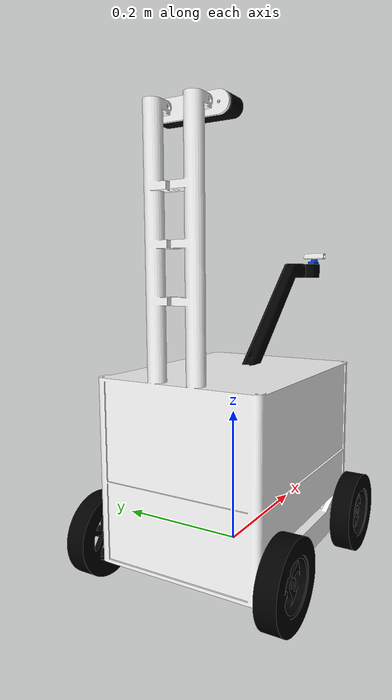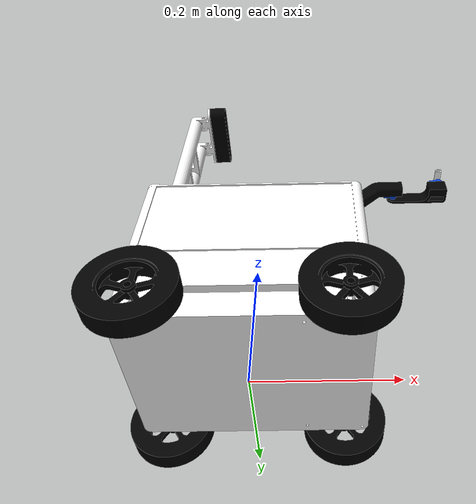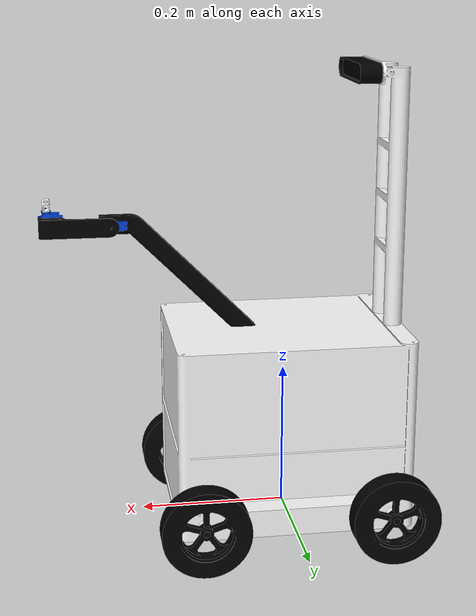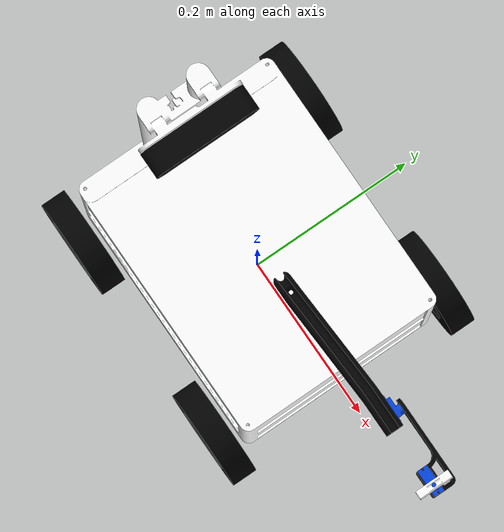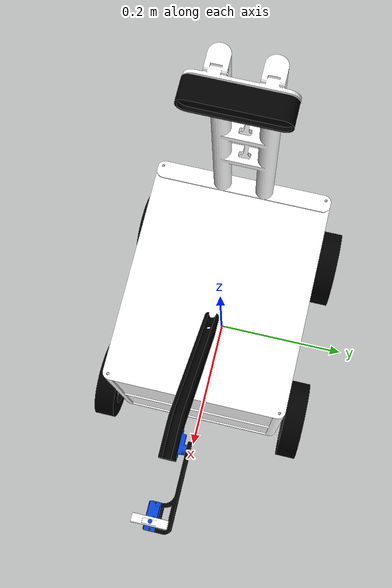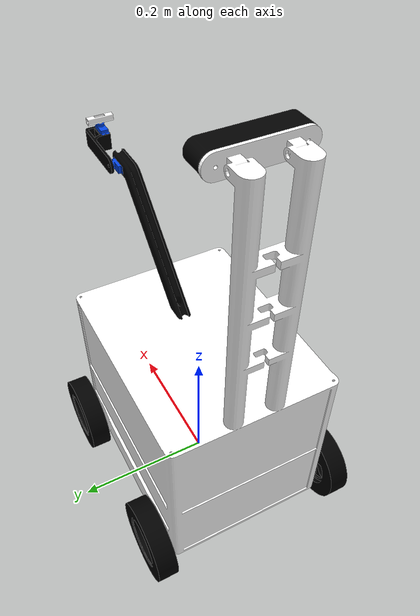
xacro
<?xml version="1.0" ?>
<robot name="fertilizer_spraying_agribot" xmlns:xacro="http://www.ros.org/wiki/xacro">

<xacro:include filename="$(find fertilizer_spraying_agribot_description)/urdf/materials.xacro" />
<xacro:arg name="use_ros2_control" default="true" />
<xacro:if value="$(arg use_ros2_control)">
  <xacro:include filename="$(find fertilizer_spraying_agribot_description)/urdf/ros2_control.xacro" />
</xacro:if>
<xacro:unless value="$(arg use_ros2_control)">
  <xacro:include filename="$(find fertilizer_spraying_agribot_description)/urdf/ros2_control_arm.xacro" />
  <xacro:include filename="$(find fertilizer_spraying_agribot_description)/urdf/fertilizer_spraying_agribot.gazebo" />
</xacro:unless>

<xacro:property name="prefix" value="fertilizer_bot"/>

<link name="${prefix}/base_link">
  <inertial>
    <origin xyz="2.1869123626052714e-05 -9.040612612999549e-05 0.09460370912297483" rpy="0 0 0"/>
    <mass value="14.720699302621092"/>
    <inertia ixx="0.205705" iyy="0.248638" izz="0.272823" ixy="1.3e-05" iyz="2e-05" ixz="1.2e-05"/>
  </inertial>
  <visual>
    <origin xyz="0 0 0" rpy="0 0 0"/>
    <geometry>
      <mesh filename="file://$(find fertilizer_spraying_agribot_description)/meshes/base_link.stl" scale="0.001 0.001 0.001"/>
    </geometry>
    <material name="white"/>
  </visual>
  <collision>
    <origin xyz="0 0 0" rpy="0 0 0"/>
    <geometry>
      <mesh filename="file://$(find fertilizer_spraying_agribot_description)/meshes/base_link.stl" scale="0.001 0.001 0.001"/>
    </geometry>
  </collision>
</link>

<link name="${prefix}/front_left_wheel_1">
  <inertial>
    <origin xyz="-2.160669809736504e-09 -0.005844234502298679 1.1920930215181258e-10" rpy="0 0 0"/>
    <mass value="0.5499403244605847"/>
    <inertia ixx="0.000299" iyy="0.000564" izz="0.000299" ixy="0.0" iyz="0.0" ixz="0.0"/>
  </inertial>
  <visual>
    <origin xyz="-0.1282 -0.1455 -0.0271" rpy="0 0 0"/>
    <geometry>
      <mesh filename="file://$(find fertilizer_spraying_agribot_description)/meshes/front_left_wheel_1.stl" scale="0.001 0.001 0.001"/>
    </geometry>
    <material name="black"/>
  </visual>
  <collision>
    <origin xyz="-0.1282 -0.1455 -0.0271" rpy="0 0 0"/>
    <geometry>
      <mesh filename="file://$(find fertilizer_spraying_agribot_description)/meshes/front_left_wheel_1.stl" scale="0.001 0.001 0.001"/>
    </geometry>
  </collision>
</link>

<link name="${prefix}/rear_left_wheel_1">
  <inertial>
    <origin xyz="2.160669809736504e-09 -0.005844234502298679 1.1920930215181258e-10" rpy="0 0 0"/>
    <mass value="0.5499403244605847"/>
    <inertia ixx="0.000299" iyy="0.000564" izz="0.000299" ixy="-0.0" iyz="0.0" ixz="-0.0"/>
  </inertial>
  <visual>
    <origin xyz="0.1282 -0.1455 -0.0271" rpy="0 0 0"/>
    <geometry>
      <mesh filename="file://$(find fertilizer_spraying_agribot_description)/meshes/rear_left_wheel_1.stl" scale="0.001 0.001 0.001"/>
    </geometry>
    <material name="black"/>
  </visual>
  <collision>
    <origin xyz="0.1282 -0.1455 -0.0271" rpy="0 0 0"/>
    <geometry>
      <mesh filename="file://$(find fertilizer_spraying_agribot_description)/meshes/rear_left_wheel_1.stl" scale="0.001 0.001 0.001"/>
    </geometry>
  </collision>
</link>

<link name="${prefix}/front_right_wheel_1">
  <inertial>
    <origin xyz="-2.160669809736504e-09 0.005844234502298679 1.1920931949904734e-10" rpy="0 0 0"/>
    <mass value="0.5499403244605846"/>
    <inertia ixx="0.000299" iyy="0.000564" izz="0.000299" ixy="-0.0" iyz="0.0" ixz="0.0"/>
  </inertial>
  <visual>
    <origin xyz="-0.1282 0.1455 -0.0271" rpy="0 0 0"/>
    <geometry>
      <mesh filename="file://$(find fertilizer_spraying_agribot_description)/meshes/front_right_wheel_1.stl" scale="0.001 0.001 0.001"/>
    </geometry>
    <material name="black"/>
  </visual>
  <collision>
    <origin xyz="-0.1282 0.1455 -0.0271" rpy="0 0 0"/>
    <geometry>
      <mesh filename="file://$(find fertilizer_spraying_agribot_description)/meshes/front_right_wheel_1.stl" scale="0.001 0.001 0.001"/>
    </geometry>
  </collision>
</link>

<link name="${prefix}/rear_right_wheel_1">
  <inertial>
    <origin xyz="2.160669809736504e-09 0.005844234502298679 1.1920930909070648e-10" rpy="0 0 0"/>
    <mass value="0.5499403244605846"/>
    <inertia ixx="0.000299" iyy="0.000564" izz="0.000299" ixy="0.0" iyz="-0.0" ixz="0.0"/>
  </inertial>
  <visual>
    <origin xyz="0.1282 0.1455 -0.0271" rpy="0 0 0"/>
    <geometry>
      <mesh filename="file://$(find fertilizer_spraying_agribot_description)/meshes/rear_right_wheel_1.stl" scale="0.001 0.001 0.001"/>
    </geometry>
    <material name="black"/>
  </visual>
  <collision>
    <origin xyz="0.1282 0.1455 -0.0271" rpy="0 0 0"/>
    <geometry>
      <mesh filename="file://$(find fertilizer_spraying_agribot_description)/meshes/rear_right_wheel_1.stl" scale="0.001 0.001 0.001"/>
    </geometry>
  </collision>
</link>

<link name="${prefix}/arm_1">
  <inertial>
    <origin xyz="0.08276510015774959 -0.00014332123224972959 0.08367217473530533" rpy="0 0 0"/>
    <mass value="0.8202950045375148"/>
    <inertia ixx="0.001808" iyy="0.003955" izz="0.002202" ixy="3e-06" iyz="2e-06" ixz="-0.001908"/>
  </inertial>
  <visual>
    <origin xyz="-0.062456 -9.4e-05 -0.234" rpy="0 0 0"/>
    <geometry>
      <mesh filename="file://$(find fertilizer_spraying_agribot_description)/meshes/arm_1.stl" scale="0.001 0.001 0.001"/>
    </geometry>
    <material name="black"/>
  </visual>
  <collision>
    <origin xyz="-0.062456 -9.4e-05 -0.234" rpy="0 0 0"/>
    <geometry>
      <mesh filename="file://$(find fertilizer_spraying_agribot_description)/meshes/arm_1.stl" scale="0.001 0.001 0.001"/>
    </geometry>
  </collision>
</link>

<link name="${prefix}/pitch_servo_motor_1">
  <inertial>
    <origin xyz="0.01432161064505455 -0.004563490865517252 2.532402275101653e-07" rpy="0 0 0"/>
    <mass value="0.04988371022222916"/>
    <inertia ixx="3e-06" iyy="3e-06" izz="5e-06" ixy="-0.0" iyz="-0.0" ixz="-0.0"/>
  </inertial>
  <visual>
    <origin xyz="-0.215519 -0.01 -0.380957" rpy="0 0 0"/>
    <geometry>
      <mesh filename="file://$(find fertilizer_spraying_agribot_description)/meshes/pitch_servo_motor_1.stl" scale="0.001 0.001 0.001"/>
    </geometry>
    <material name="blue"/>
  </visual>
  <collision>
    <origin xyz="-0.215519 -0.01 -0.380957" rpy="0 0 0"/>
    <geometry>
      <mesh filename="file://$(find fertilizer_spraying_agribot_description)/meshes/pitch_servo_motor_1.stl" scale="0.001 0.001 0.001"/>
    </geometry>
  </collision>
</link>

<link name="${prefix}/wrist_1">
  <inertial>
    <origin xyz="0.06116445968446804 -0.009348814025358865 -0.0008396582841039835" rpy="0 0 0"/>
    <mass value="0.16487079884960656"/>
    <inertia ixx="2.4e-05" iyy="0.000137" izz="0.000144" ixy="2.4e-05" iyz="-2e-06" ixz="3e-06"/>
  </inertial>
  <visual>
    <origin xyz="-0.234919 -0.02198 -0.380957" rpy="0 0 0"/>
    <geometry>
      <mesh filename="file://$(find fertilizer_spraying_agribot_description)/meshes/wrist_1.stl" scale="0.001 0.001 0.001"/>
    </geometry>
    <material name="black"/>
  </visual>
  <collision>
    <origin xyz="-0.234919 -0.02198 -0.380957" rpy="0 0 0"/>
    <geometry>
      <mesh filename="file://$(find fertilizer_spraying_agribot_description)/meshes/wrist_1.stl" scale="0.001 0.001 0.001"/>
    </geometry>
  </collision>
</link>

<link name="${prefix}/yaw_servo_motor_1">
  <inertial>
    <origin xyz="0.01429610646050472 4.827673573096116e-07 -0.005315740441837247" rpy="0 0 0"/>
    <mass value="0.05310535022222927"/>
    <inertia ixx="3e-06" iyy="5e-06" izz="3e-06" ixy="0.0" iyz="0.0" ixz="-0.0"/>
  </inertial>
  <visual>
    <origin xyz="-0.299522 -0.000169 -0.393676" rpy="0 0 0"/>
    <geometry>
      <mesh filename="file://$(find fertilizer_spraying_agribot_description)/meshes/yaw_servo_motor_1.stl" scale="0.001 0.001 0.001"/>
    </geometry>
    <material name="blue"/>
  </visual>
  <collision>
    <origin xyz="-0.299522 -0.000169 -0.393676" rpy="0 0 0"/>
    <geometry>
      <mesh filename="file://$(find fertilizer_spraying_agribot_description)/meshes/yaw_servo_motor_1.stl" scale="0.001 0.001 0.001"/>
    </geometry>
  </collision>
</link>

<link name="${prefix}/nozzle_handler_v1_1">
  <inertial>
    <origin xyz="-2.166408265724673e-05 3.765912901446957e-06 0.006154848548439673" rpy="0 0 0"/>
    <mass value="0.013452120517327887"/>
    <inertia ixx="2e-06" iyy="0.0" izz="2e-06" ixy="-0.0" iyz="-0.0" ixz="0.0"/>
  </inertial>
  <visual>
    <origin xyz="-0.318922 -0.000169 -0.402656" rpy="0 0 0"/>
    <geometry>
      <mesh filename="file://$(find fertilizer_spraying_agribot_description)/meshes/nozzle_handler_v1_1.stl" scale="0.001 0.001 0.001"/>
    </geometry>
    <material name="white"/>
  </visual>
  <collision>
    <origin xyz="-0.318922 -0.000169 -0.402656" rpy="0 0 0"/>
    <geometry>
      <mesh filename="file://$(find fertilizer_spraying_agribot_description)/meshes/nozzle_handler_v1_1.stl" scale="0.001 0.001 0.001"/>
    </geometry>
  </collision>
</link>

<link name="${prefix}_camera_link">
  <inertial>
    <origin xyz="0.012632722258798107 1.4517705249875341e-07 0.03" rpy="0 0 0"/>
    <mass value="0.6086932812705539"/>
    <inertia ixx="0.000763" iyy="6.8e-05" izz="0.000762" ixy="0.0" iyz="-0.0" ixz="0.0"/>
  </inertial>
  <visual>
    <origin xyz="-0.1225 0.000488 -0.171" rpy="0 0 0"/>
    <geometry>
      <mesh filename="file://$(find fertilizer_spraying_agribot_description)/meshes/camera_link_1.stl" scale="0.001 0.001 0.001"/>
    </geometry>
    <material name="black"/>
  </visual>
  <collision>
    <origin xyz="-0.1225 0.000488 -0.171" rpy="0 0 0"/>
    <geometry>
      <mesh filename="file://$(find fertilizer_spraying_agribot_description)/meshes/camera_link_1.stl" scale="0.001 0.001 0.001"/>
    </geometry>
  </collision>
</link>

<joint name="${prefix}_camera_optical_joint" type="fixed">
  <parent link="${prefix}_camera_link"/>
  <child link="${prefix}_camera_color_frame"/>
  <origin xyz="0.01 0 0.03" rpy="${-pi/2} 0 ${-pi/2}"/>
</joint>

<link name="${prefix}_camera_color_frame"></link>

<joint name="${prefix}/Revolute_6" type="continuous">
  <origin xyz="0.1282 0.1455 0.0271" rpy="0 0 0"/>
  <parent link="${prefix}/base_link"/>
  <child link="${prefix}/front_left_wheel_1"/>
  <axis xyz="0.0 1.0 0.0"/>
</joint>

<joint name="${prefix}/Revolute_7" type="continuous">
  <origin xyz="-0.1282 0.1455 0.0271" rpy="0 0 0"/>
  <parent link="${prefix}/base_link"/>
  <child link="${prefix}/rear_left_wheel_1"/>
  <axis xyz="0.0 1.0 0.0"/>
</joint>

<joint name="${prefix}/Revolute_8" type="continuous">
  <origin xyz="0.1282 -0.1455 0.0271" rpy="0 0 0"/>
  <parent link="${prefix}/base_link"/>
  <child link="${prefix}/front_right_wheel_1"/>
  <axis xyz="0.0 1.0 0.0"/>
</joint>

<joint name="${prefix}/Revolute_9" type="continuous">
  <origin xyz="-0.1282 -0.1455 0.0271" rpy="0 0 0"/>
  <parent link="${prefix}/base_link"/>
  <child link="${prefix}/rear_right_wheel_1"/>
  <axis xyz="0.0 1.0 0.0"/>
</joint>

<joint name="${prefix}/Rigid_9" type="fixed">
  <origin xyz="0.062456 9.4e-05 0.265" rpy="0 0 0"/>
  <parent link="${prefix}/base_link"/>
  <child link="${prefix}/arm_1"/>
</joint>

<joint name="${prefix}/Rigid_10" type="fixed">
  <origin xyz="0.153063 0.009906 0.146957" rpy="0 0 0"/>
  <parent link="${prefix}/arm_1"/>
  <child link="${prefix}/pitch_servo_motor_1"/>
</joint>

<joint name="${prefix}/Revolute_11" type="continuous">
  <origin xyz="0.0194 0.01198 0.0" rpy="0 0 0"/>
  <parent link="${prefix}/pitch_servo_motor_1"/>
  <child link="${prefix}/wrist_1"/>
  <axis xyz="-0.0 1.0 -0.0"/>
</joint>

<joint name="${prefix}/Rigid_12" type="fixed">
  <origin xyz="0.064603 -0.021811 0.012719" rpy="0 0 0"/>
  <parent link="${prefix}/wrist_1"/>
  <child link="${prefix}/yaw_servo_motor_1"/>
</joint>

<joint name="${prefix}/Revolute_13" type="continuous">
  <origin xyz="0.0194 0.0 0.00898" rpy="0 0 0"/>
  <parent link="${prefix}/yaw_servo_motor_1"/>
  <child link="${prefix}/nozzle_handler_v1_1"/>
  <axis xyz="-0.0 0.0 -1.0"/>
</joint>

<joint name="${prefix}/Rigid 14" type="fixed">
  <origin xyz="-0.115 -0.000488 0.58" rpy="0 0 0"/>
  <parent link="${prefix}/base_link"/>
  <child link="${prefix}_camera_link"/>
</joint>

</robot>

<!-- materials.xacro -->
<robot name="agribot" xmlns:xacro="http://www.ros.org/wiki/xacro" >

<material name="silver">
  <color rgba="0.700 0.700 0.700 1.000"/>
</material>

<material name="black">
  <color rgba="0 0 0 1"/>
</material>

<material name="orange">
  <color rgba="0.9764705882352941 0.45098039215686275 0.023529411764705882 1.0" />
</material>

<material name="white" >
  <color rgba="1.0 1.0 1.0 1.0" />
</material>

<material name="blue" >
  <color rgba="0.011764705882352941 0.2627450980392157 0.8745098039215686 1.0" />
</material>

</robot>
